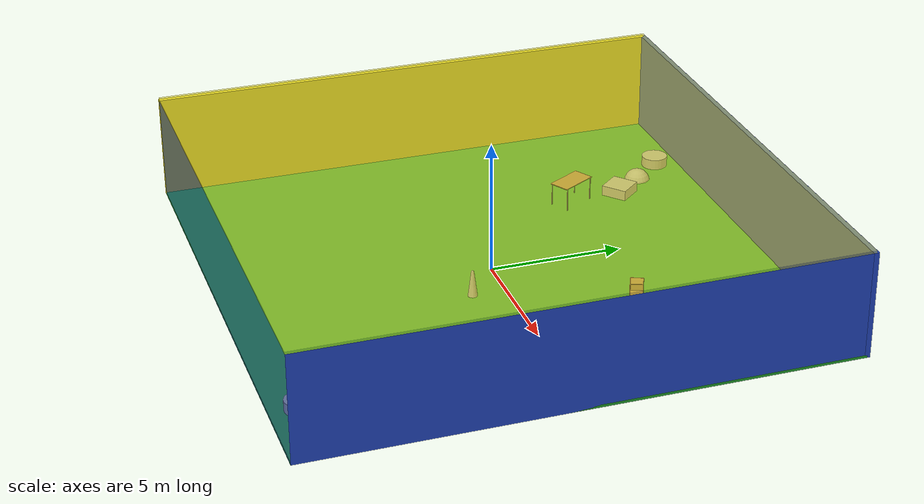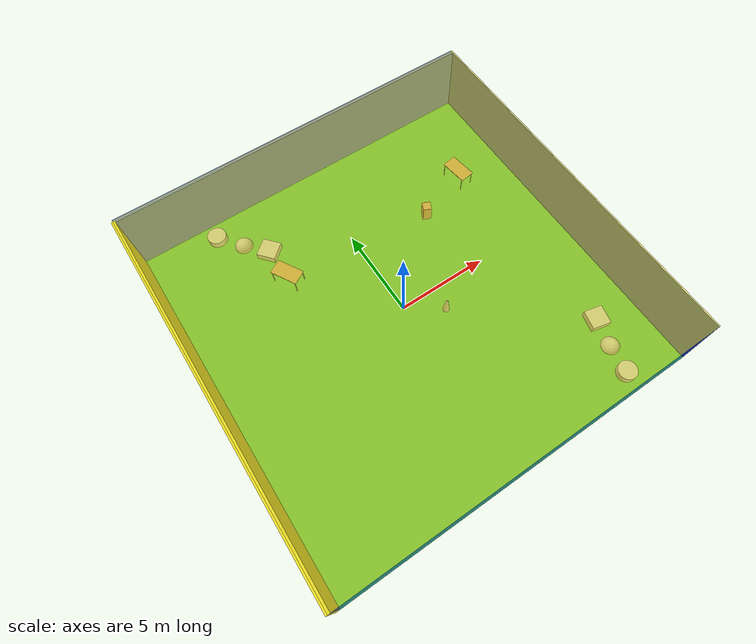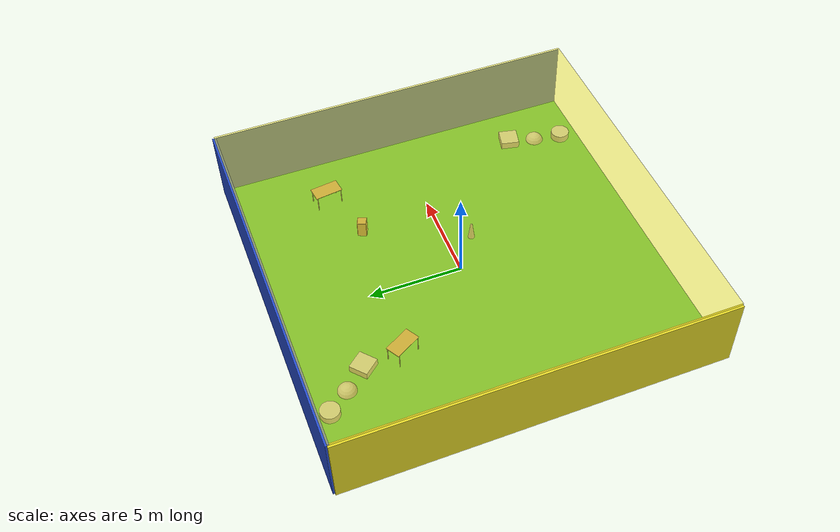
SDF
<sdf version="1.4">
 <world name="default">
  <physics type="ode">
   <max_step_size>0.001</max_step_size>
   <real_time_factor>1</real_time_factor>
   <real_time_update_rate>1000</real_time_update_rate>
   <gravity>0 0 -9.8</gravity>
  </physics>
  <scene><ambient>0.4 0.4 0.4 1</ambient><background>0.7 0.7 0.7 1</background><shadows>1</shadows></scene>
  <model name="Surrounding">
   <static>1</static>
   <link name="Ceiling">
    <collision name="Ceiling_Collision"><geometry><box><size>20 20 0.1</size></box></geometry></collision>
    <visual name="Ceiling_Visual">
     <geometry><box><size>20 20 0.1</size></box></geometry>
     <material>
      <script>
       <uri>file://media/materials/scripts/gazebo.material</uri>
       <name>Gazebo/YellowTransparent</name>
      </script>
     </material>
    </visual>
    <pose>0 0 4.05 0 0 0</pose>
   </link>
   <link name="Wall_South">
    <collision name="Wall_South_Collision">
     <geometry><box><size>20 0 4</size></box></geometry>
     <pose>0 0 2 0 -0 0</pose>
    </collision>
    <visual name="Wall_South_Visual">
     <pose>0 0 2 0 -0 0</pose>
     <geometry><box><size>20 0 4</size></box></geometry>
     <material>
      <script><uri>file://media/materials/scripts/gazebo.material</uri><name>Gazebo/BlueTransparent</name></script>
     </material>
    </visual>
    <velocity_decay><linear>0</linear><angular>0</angular></velocity_decay>
    <pose>0 -10 0 0 -0 0</pose>
   </link>
   <link name="Wall_East">
    <collision name="Wall_21_Collision">
     <geometry><box><size>20 0 4</size></box></geometry>
     <pose>0 0 2 0 -0 0</pose>
    </collision>
    <visual name="Wall_21_Visual">
     <pose>0 0 2 0 -0 0</pose>
     <geometry><box><size>20 0 4</size></box></geometry>
     <material>
      <script><uri>file://media/materials/scripts/gazebo.material</uri><name>Gazebo/Blue</name></script>
     </material>
    </visual>
    <velocity_decay><linear>0</linear><angular>0</angular></velocity_decay>
    <pose>10 0 0 0 -0 1.5708</pose>
   </link>
   <link name="Wall_North">
    <collision name="Wall_22_Collision">
     <geometry><box><size>20 0.2 4</size></box></geometry>
     <pose>0 0 2 0 -0 0</pose>
    </collision>
    <visual name="Wall_22_Visual">
     <pose>0 0 2 0 -0 0</pose>
     <geometry><box><size>20 0.2 4</size></box></geometry>
     <material>
      <script><uri>file://media/materials/scripts/gazebo.material</uri><name>Gazebo/BlueLaser</name></script>
     </material>
    </visual>
    <velocity_decay><linear>0</linear><angular>0</angular></velocity_decay>
    <pose>0 10 0 0 -0 0</pose>
   </link>
   <link name="Wall_West">
    <collision name="Wall_23_Collision">
     <geometry><box><size>20 0.2 4</size></box></geometry>
     <pose>0 0 2 0 -0 0</pose>
    </collision>
    <visual name="Wall_23_Visual">
     <pose>0 0 2 0 -0 0</pose>
     <geometry><box><size>20 0.2 4</size></box></geometry>
     <material>
      <script><uri>file://media/materials/scripts/gazebo.material</uri><name>Gazebo/YellowGlow</name></script>
     </material>
    </visual>
    <velocity_decay><linear>0</linear><angular>0</angular></velocity_decay>
    <pose>-10 0 0 0 0 -1.5708</pose>
   </link>
   <link name="Ground_link">
    <collision name="collision">
     <pose>0 0 .05 0 -0 0</pose>
     <geometry><box><size>20 20 0.1</size></box></geometry>
    </collision>
    <visual name="visual">
     <pose>0 0 .05 0 -0 0</pose>
     <geometry><box><size>20 20 0.1</size></box></geometry>
     <material>
      <script><uri>file://media/materials/scripts/gazebo.material</uri><name>Gazebo/Green</name></script>
     </material>
    </visual>
   </link>
   <static>1</static>
  </model>
  <spherical_coordinates>
   <surface_model>EARTH_WGS84</surface_model>
   <latitude_deg>0</latitude_deg>
   <longitude_deg>0</longitude_deg>
   <elevation>0</elevation>
   <heading_deg>0</heading_deg>
  </spherical_coordinates>
  <light name="lightball_0" type="diffuse">
   <diffuse>0.8 0.8 0.8 1</diffuse>
   <specular>0.2 0.2 0.2 1</specular>
   <attenuation>
    <range>100</range>
    <constant>0.7</constant>
    <linear>0.01</linear>
    <quadratic>0.001</quadratic>
   </attenuation>
   <direction>-0.5 0.1 -0.9</direction>
   <pose>2.89570151814 -1.69138329368 1.6411280632 0 0 0</pose>
  </light>
  <light name="lightball_1" type="diffuse">
   <diffuse>0.8 0.8 0.8 1</diffuse>
   <specular>0.2 0.2 0.2 1</specular>
   <attenuation>
    <range>100</range>
    <constant>0.7</constant>
    <linear>0.01</linear>
    <quadratic>0.001</quadratic>
   </attenuation>
   <direction>-0.5 0.1 -0.9</direction>
   <pose>-1.33269360989 -4.39097908811 1.53584451242 0 0 0</pose>
  </light>
  <light name="lightball_2" type="diffuse">
   <diffuse>0.8 0.8 0.8 1</diffuse>
   <specular>0.2 0.2 0.2 1</specular>
   <attenuation>
    <range>100</range>
    <constant>0.7</constant>
    <linear>0.01</linear>
    <quadratic>0.001</quadratic>
   </attenuation>
   <direction>-0.5 0.1 -0.9</direction>
   <pose>1.60501311009 -7.02684528453 2.21954322715 0 0 0</pose>
  </light>
  <light name="lightball_3" type="diffuse">
   <diffuse>0.8 0.8 0.8 1</diffuse>
   <specular>0.2 0.2 0.2 1</specular>
   <attenuation>
    <range>100</range>
    <constant>0.7</constant>
    <linear>0.01</linear>
    <quadratic>0.001</quadratic>
   </attenuation>
   <direction>-0.5 0.1 -0.9</direction>
   <pose>3.07009436026 -0.0717019094378 2.61421447512 0 0 0</pose>
  </light>
  <light name="lightball_4" type="diffuse">
   <diffuse>0.8 0.8 0.8 1</diffuse>
   <specular>0.2 0.2 0.2 1</specular>
   <attenuation>
    <range>100</range>
    <constant>0.7</constant>
    <linear>0.01</linear>
    <quadratic>0.001</quadratic>
   </attenuation>
   <direction>-0.5 0.1 -0.9</direction>
   <pose>0.185838661091 9.78799059818 0.676842681668 0 0 0</pose>
  </light>
  <light name="lightball_5" type="diffuse">
   <diffuse>0.8 0.8 0.8 1</diffuse>
   <specular>0.2 0.2 0.2 1</specular>
   <attenuation>
    <range>100</range>
    <constant>0.7</constant>
    <linear>0.01</linear>
    <quadratic>0.001</quadratic>
   </attenuation>
   <direction>-0.5 0.1 -0.9</direction>
   <pose>-1.13399753543 -2.71228971769 2.21650632849 0 0 0</pose>
  </light>
  <light name="lightball_6" type="diffuse">
   <diffuse>0.8 0.8 0.8 1</diffuse>
   <specular>0.2 0.2 0.2 1</specular>
   <attenuation>
    <range>100</range>
    <constant>0.7</constant>
    <linear>0.01</linear>
    <quadratic>0.001</quadratic>
   </attenuation>
   <direction>-0.5 0.1 -0.9</direction>
   <pose>2.62283521694 4.64923387899 0.602408057416 0 0 0</pose>
  </light>
  <light name="lightball_7" type="diffuse">
   <diffuse>0.8 0.8 0.8 1</diffuse>
   <specular>0.2 0.2 0.2 1</specular>
   <attenuation>
    <range>100</range>
    <constant>0.7</constant>
    <linear>0.01</linear>
    <quadratic>0.001</quadratic>
   </attenuation>
   <direction>-0.5 0.1 -0.9</direction>
   <pose>4.80496867847 6.58127617735 0.590295100254 0 0 0</pose>
  </light>
  <light name="lightball_8" type="diffuse">
   <diffuse>0.8 0.8 0.8 1</diffuse>
   <specular>0.2 0.2 0.2 1</specular>
   <attenuation>
    <range>100</range>
    <constant>0.7</constant>
    <linear>0.01</linear>
    <quadratic>0.001</quadratic>
   </attenuation>
   <direction>-0.5 0.1 -0.9</direction>
   <pose>-4.66678364585 -1.85642788556 2.56776728048 0 0 0</pose>
  </light>
  <light name="lightball_9" type="diffuse">
   <diffuse>0.8 0.8 0.8 1</diffuse>
   <specular>0.2 0.2 0.2 1</specular>
   <attenuation>
    <range>100</range>
    <constant>0.7</constant>
    <linear>0.01</linear>
    <quadratic>0.001</quadratic>
   </attenuation>
   <direction>-0.5 0.1 -0.9</direction>
   <pose>6.16745833466 0.45905500372 3.40300511748 0 0 0</pose>
  </light>
  <light name="lightball_10" type="diffuse">
   <diffuse>0.8 0.8 0.8 1</diffuse>
   <specular>0.2 0.2 0.2 1</specular>
   <attenuation>
    <range>100</range>
    <constant>0.7</constant>
    <linear>0.01</linear>
    <quadratic>0.001</quadratic>
   </attenuation>
   <direction>-0.5 0.1 -0.9</direction>
   <pose>-9.39753519677 -9.90714029879 1.91359121031 0 0 0</pose>
  </light>
  <light name="lightball_11" type="diffuse">
   <diffuse>0.8 0.8 0.8 1</diffuse>
   <specular>0.2 0.2 0.2 1</specular>
   <attenuation>
    <range>100</range>
    <constant>0.7</constant>
    <linear>0.01</linear>
    <quadratic>0.001</quadratic>
   </attenuation>
   <direction>-0.5 0.1 -0.9</direction>
   <pose>9.73603989542 1.41120605574 2.21980879058 0 0 0</pose>
  </light>
  <light name="lightball_12" type="diffuse">
   <diffuse>0.8 0.8 0.8 1</diffuse>
   <specular>0.2 0.2 0.2 1</specular>
   <attenuation>
    <range>100</range>
    <constant>0.7</constant>
    <linear>0.01</linear>
    <quadratic>0.001</quadratic>
   </attenuation>
   <direction>-0.5 0.1 -0.9</direction>
   <pose>2.67426031346 3.54884934144 2.05864993035 0 0 0</pose>
  </light>
  <light name="lightball_13" type="diffuse">
   <diffuse>0.8 0.8 0.8 1</diffuse>
   <specular>0.2 0.2 0.2 1</specular>
   <attenuation>
    <range>100</range>
    <constant>0.7</constant>
    <linear>0.01</linear>
    <quadratic>0.001</quadratic>
   </attenuation>
   <direction>-0.5 0.1 -0.9</direction>
   <pose>3.98368476658 -4.65003383747 2.73631912365 0 0 0</pose>
  </light>
  <include><uri>model://table</uri><pose>-4.06393125756 4.64961507299 0 0 0 2.0905640368</pose></include>
  <include>
   <uri>model://textured_shapes</uri>
   <pose>-5.09908202662 7.83876375472 0 0 0 0.706159085354</pose>
  </include>
  <include>
   <uri>model://construction_cone</uri>
   <pose>1.77871552642 -1.30762248387 0 0 0 2.98870827765</pose>
  </include>
  <include><uri>model://cabinet</uri><pose>4.21174876576 3.9544746918 0 0 0 2.7228017864</pose></include>
  <include>
   <uri>model://textured_shapes</uri>
   <pose>7.41867757524 -7.52579983692 0 0 0 2.91946459227</pose>
  </include>
  <include><uri>model://table</uri><pose>7.09653425661 5.01503736211 0 0 0 1.7026267523</pose></include>
 </world>
</sdf>

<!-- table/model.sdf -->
<sdf version="1.5">
  <model name="table">
    <static>true</static>
    <link name="link">
      <collision name="surface">
        <pose>0 0 1.0 0 0 0</pose>
        <geometry>
          <box>
            <size>1.5 0.8 0.03</size>
          </box>
        </geometry>
        <surface>
          <friction>
            <ode>
              <mu>0.6</mu>
              <mu2>0.6</mu2>
            </ode>
          </friction>
        </surface>
      </collision>
      <visual name="visual1">
        <pose>0 0 1.0 0 0 0</pose>
        <geometry>
          <box>
            <size>1.5 0.8 0.03</size>
          </box>
        </geometry>
        <material>
          <script>
            <uri>model://media/materials/scripts/gazebo.material</uri>
            <name>Gazebo/Wood</name>
          </script>
        </material>
      </visual>
      <collision name="front_left_leg">
        <pose>0.68 0.38 0.5 0 0 0</pose>
        <geometry>
          <cylinder>
            <radius>0.02</radius>
            <length>1.0</length>
          </cylinder>
        </geometry>
      </collision>
      <visual name="front_left_leg">
        <pose>0.68 0.38 0.5 0 0 0</pose>
        <geometry>
          <cylinder>
            <radius>0.02</radius>
            <length>1.0</length>
          </cylinder>
        </geometry>
        <material>
          <script>
            <uri>model://media/materials/scripts/gazebo.material</uri>
            <name>Gazebo/Grey</name>
          </script>
        </material>
      </visual>
      <collision name="front_right_leg">
        <pose>0.68 -0.38 0.5 0 0 0</pose>
        <geometry>
          <cylinder>
            <radius>0.02</radius>
            <length>1.0</length>
          </cylinder>
        </geometry>
      </collision>
      <visual name="front_right_leg">
        <pose>0.68 -0.38 0.5 0 0 0</pose>
        <geometry>
          <cylinder>
            <radius>0.02</radius>
            <length>1.0</length>
          </cylinder>
        </geometry>
        <material>
          <script>
            <uri>model://media/materials/scripts/gazebo.material</uri>
            <name>Gazebo/Grey</name>
          </script>
        </material>
      </visual>
      <collision name="back_right_leg">
        <pose>-0.68 -0.38 0.5 0 0 0</pose>
        <geometry>
          <cylinder>
            <radius>0.02</radius>
            <length>1.0</length>
          </cylinder>
        </geometry>
      </collision>
      <visual name="back_right_leg">
        <pose>-0.68 -0.38 0.5 0 0 0</pose>
        <geometry>
          <cylinder>
            <radius>0.02</radius>
            <length>1.0</length>
          </cylinder>
        </geometry>
        <material>
          <script>
            <uri>model://media/materials/scripts/gazebo.material</uri>
            <name>Gazebo/Grey</name>
          </script>
        </material>
      </visual>
      <collision name="back_left_leg">
        <pose>-0.68 0.38 0.5 0 0 0</pose>
        <geometry>
          <cylinder>
            <radius>0.02</radius>
            <length>1.0</length>
          </cylinder>
        </geometry>
      </collision>
      <visual name="back_left_leg">
        <pose>-0.68 0.38 0.5 0 0 0</pose>
        <geometry>
          <cylinder>
            <radius>0.02</radius>
            <length>1.0</length>
          </cylinder>
        </geometry>
        <material>
          <script>
            <uri>model://media/materials/scripts/gazebo.material</uri>
            <name>Gazebo/Grey</name>
          </script>
        </material>
      </visual>
    </link>
  </model>
</sdf>

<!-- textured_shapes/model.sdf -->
<sdf version="1.6">
  <model name="textured_shapes">
    <pose>0 0 0.5 0 0 0</pose>
    <link name="box">
      <pose>0 -1.5 0 0 0 0</pose>
      <collision name="collision">
        <geometry>
          <box>
            <size>1 1 1</size>
          </box>
        </geometry>
      </collision>
      <visual name="visual">
        <geometry>
          <box>
            <size>1 1 1</size>
          </box>
        </geometry>
        <material>
          <script>
            <uri>model://../model_source/models/textured_shapes/materials/scripts</uri>
            <uri>model://../model_source/models/textured_shapes/materials/textures</uri>
            <name>TexturedShape/Squares</name>
          </script>
        </material>
      </visual>
    </link>
    <link name="sphere">
      <collision name="collision">
        <geometry>
          <sphere>
            <radius>0.5</radius>
          </sphere>
        </geometry>
      </collision>
      <visual name="visual">
        <geometry>
          <sphere>
            <radius>0.5</radius>
          </sphere>
        </geometry>
        <material>
          <script>
            <uri>model://../model_source/models/textured_shapes/materials/scripts</uri>
            <uri>model://../model_source/models/textured_shapes/materials/textures</uri>
            <name>TexturedShape/Squares</name>
          </script>
        </material>
      </visual>
    </link>
    <link name="cylinder">
      <pose>0 1.5 0 0 0 0</pose>
      <collision name="collision">
        <geometry>
          <cylinder>
            <radius>0.5</radius>
            <length>1</length>
          </cylinder>
        </geometry>
      </collision>
      <visual name="visual">
        <geometry>
          <cylinder>
            <radius>0.5</radius>
            <length>1</length>
          </cylinder>
        </geometry>
        <material>
          <script>
            <uri>model://../model_source/models/textured_shapes/materials/scripts</uri>
            <uri>model://../model_source/models/textured_shapes/materials/textures</uri>
            <name>TexturedShape/Squares</name>
          </script>
        </material>
      </visual>
    </link>
  </model>
</sdf>

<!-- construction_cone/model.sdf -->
<sdf version="1.5">
  <model name="Construction Cone">
    <link name="link">
      <collision name="collision">
        <geometry>
          <mesh>
            <scale>10 10 10</scale>
            <uri>file://isr-testbed/construction_cone/meshes/construction_cone.dae</uri>
          </mesh>
        </geometry>
      </collision>
      <visual name="visual">
        <geometry>
          <mesh>
            <scale>10 10 10</scale>
            <uri>file://isr-testbed/construction_cone/meshes/construction_cone.dae</uri>
          </mesh>
        </geometry>
      </visual>
    </link>
  </model>
</sdf>

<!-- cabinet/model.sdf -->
<sdf version="1.5">
  <model name="cabinet">
    <static>true</static>
    <link name="cabinet_bottom_plate">
      <inertial>
        <pose>0 0 -1 0 0 0</pose>
        <inertia>
          <ixx>2.050000</ixx>
          <ixy>0</ixy>
          <ixz>0</ixz>
          <iyy>2.050000</iyy>
          <iyz>0</iyz>
          <izz>2.050000</izz>
        </inertia>
        <mass>25.000000</mass>
      </inertial>
      <collision name="cabinet_bottom_plate_geom">
        <pose>0 0 0.010000 0 0 0</pose>
        <geometry>
          <box>
            <size>0.450000 0.450000 0.020000</size>
          </box>
        </geometry>
      </collision>
      <visual name="cabinet_bottom_plate_geom_visual">
        <pose>0 0 0.010000 0 0 0</pose>
        <geometry>
          <box>
            <size>0.450000 0.450000 0.020000</size>
          </box>
        </geometry>
        <material>
          <script>
            <uri>model://media/materials/scripts/gazebo.material</uri>
            <name>Gazebo/Wood</name>
          </script>
        </material>
      </visual>
      <collision name="cabinet_bottom_plate_geom_cabinet_back_plate">
        <pose>0.235000 0 0.510000 0 0 0</pose>
        <geometry>
          <box>
            <size>0.020000 0.450000 1.020000</size>
          </box>
        </geometry>
      </collision>
      <visual name="cabinet_bottom_plate_geom_cabinet_back_plate_visual">
        <pose>0.235000 0 0.510000 0 0 0</pose>
        <geometry>
          <box>
            <size>0.020000 0.450000 1.020000</size>
          </box>
        </geometry>
        <material>
          <script>
            <uri>model://media/materials/scripts/gazebo.material</uri>
            <name>Gazebo/Wood</name>
          </script>
        </material>
      </visual>
      <collision name="cabinet_bottom_plate_geom_cabinet_left_plate">
        <pose>0 0.235000 0.510000 0 0 0</pose>
        <geometry>
          <box>
            <size>0.450000 0.020000 1.020000</size>
          </box>
        </geometry>
      </collision>
      <visual name="cabinet_bottom_plate_geom_cabinet_left_plate_visual">
        <pose>0 0.235000 0.510000 0 0 0</pose>
        <geometry>
          <box>
            <size>0.450000 0.020000 1.020000</size>
          </box>
        </geometry>
        <material>
          <script>
            <uri>model://media/materials/scripts/gazebo.material</uri>
            <name>Gazebo/Wood</name>
          </script>
        </material>
      </visual>
      <collision name="cabinet_bottom_plate_geom_cabinet_middle_plate">
        <pose>0 0 0.510000 0 0 0</pose>
        <geometry>
          <box>
            <size>0.450000 0.450000 0.020000</size>
          </box>
        </geometry>
      </collision>
      <visual name="cabinet_bottom_plate_geom_cabinet_middle_plate_visual">
        <pose>0 0 0.510000 0 0 0</pose>
        <geometry>
          <box>
            <size>0.450000 0.450000 0.020000</size>
          </box>
        </geometry>
        <material>
          <script>
            <uri>model://media/materials/scripts/gazebo.material</uri>
            <name>Gazebo/Wood</name>
          </script>
        </material>
      </visual>
      <collision name="cabinet_bottom_plate_geom_cabinet_right_plate">
        <pose>0 -0.235000 0.510000 0 0 0</pose>
        <geometry>
          <box>
            <size>0.450000 0.020000 1.020000</size>
          </box>
        </geometry>
      </collision>
      <visual name="cabinet_bottom_plate_geom_cabinet_right_plate_visual">
        <pose>0 -0.235000 0.510000 0 0 0</pose>
        <geometry>
          <box>
            <size>0.450000 0.020000 1.020000</size>
          </box>
        </geometry>
        <material>
          <script>
            <uri>model://media/materials/scripts/gazebo.material</uri>
            <name>Gazebo/Wood</name>
          </script>
        </material>
      </visual>
      <collision name="cabinet_bottom_plate_geom_cabinet_top_plate">
        <pose>0 0 1.010000 0 0 0</pose>
        <geometry>
          <box>
            <size>0.450000 0.450000 0.020000</size>
          </box>
        </geometry>
      </collision>
      <visual name="cabinet_bottom_plate_geom_cabinet_top_plate_visual">
        <pose>0 0 1.010000 0 0 0</pose>
        <geometry>
          <box>
            <size>0.450000 0.450000 0.020000</size>
          </box>
        </geometry>
        <material>
          <script>
            <uri>model://media/materials/scripts/gazebo.material</uri>
            <name>Gazebo/Wood</name>
          </script>
        </material>
      </visual>
    </link>
  </model>
</sdf>
